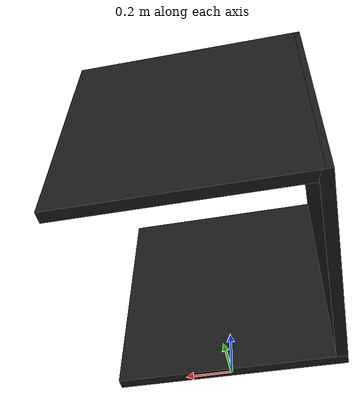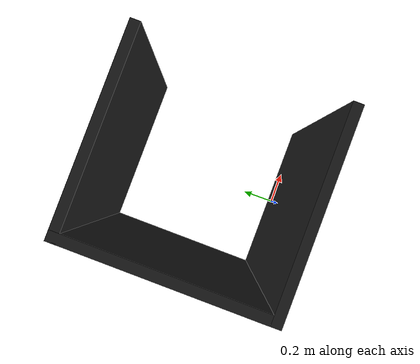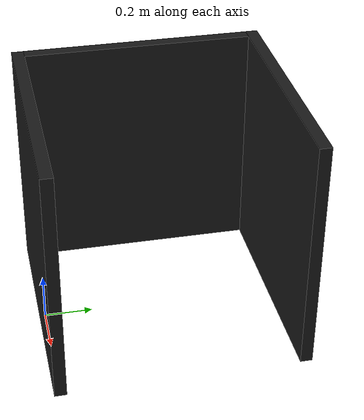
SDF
<?xml version='1.0'?>
<sdf version='1.4'>
  <model name="barrier_3">
	<static>true</static>
	<link name='chassis'>
	<pose>0 0 0.5 0 0 0</pose>

	<collision name='collision'>
	  <geometry>
		<box>
		  <size>1 .05 1</size>
		</box>
	  </geometry>
	</collision>

	<visual name='visual'>
	  <geometry>
		<box>
		  <size>1 .05 1</size>
		</box>
	  </geometry>
      <material>
        <ambient>.1 .1 .1 1</ambient>
        <diffuse>.1 .1 .1 1</diffuse>
        <specular>0.1 0.1 0.1 1</specular>
        <emissive>0 0 0 0</emissive>
      </material>
	</visual>

	<collision name='collision2'>
      <pose>-0.475 0.525 0 0 0 1.57</pose>
	  <geometry>
		<box>
		  <size>1 .05 1</size>
		</box>
	  </geometry>
	</collision>

	<visual name='visual2'>
      <pose>-0.475 0.525 0 0 0 1.57</pose>
	  <geometry>
		<box>
		  <size>1 .05 1</size>
		</box>
	  </geometry>
      <material>
        <ambient>.1 .1 .1 1</ambient>
        <diffuse>.1 .1 .1 1</diffuse>
        <specular>0.1 0.1 0.1 1</specular>
        <emissive>0 0 0 0</emissive>
      </material>
	</visual>

	<collision name='collision3'>
      <pose>0 1 0 0 0 0</pose>
	  <geometry>
		<box>
		  <size>1 .05 1</size>
		</box>
	  </geometry>
	</collision>

	<visual name='visual3'>
      <pose>0 1 0 0 0 0</pose>
	  <geometry>
		<box>
		  <size>1 .05 1</size>
		</box>
	  </geometry>
      <material>
        <ambient>.1 .1 .1 1</ambient>
        <diffuse>.1 .1 .1 1</diffuse>
        <specular>0.1 0.1 0.1 1</specular>
        <emissive>0 0 0 0</emissive>
      </material>
	</visual>
	<sensor name="contact_sensor_1" type="contact">

	<plugin name="my_contact_plugin" filename="libgazebo_ros_bumper.so">
		<bumperTopicName>obstacle_bumper</bumperTopicName>
    		<frameName>world</frameName>
	</plugin>
          <contact>
            <collision>collision</collision>
          </contact>

      </sensor>
	<sensor name="contact_sensor_2" type="contact">

	<plugin name="my_contact_plugin" filename="libgazebo_ros_bumper.so">
		<bumperTopicName>obstacle_bumper</bumperTopicName>
    		<frameName>world</frameName>
	</plugin>
          <contact>
            <collision>collision2</collision>
          </contact>

      </sensor>
	<sensor name="contact_sensor_3" type="contact">

	<plugin name="my_contact_plugin" filename="libgazebo_ros_bumper.so">
		<bumperTopicName>obstacle_bumper</bumperTopicName>
    		<frameName>world</frameName>
	</plugin>
          <contact>
            <collision>collision3</collision>
          </contact>

      </sensor>

	</link>
	</model>
</sdf>
